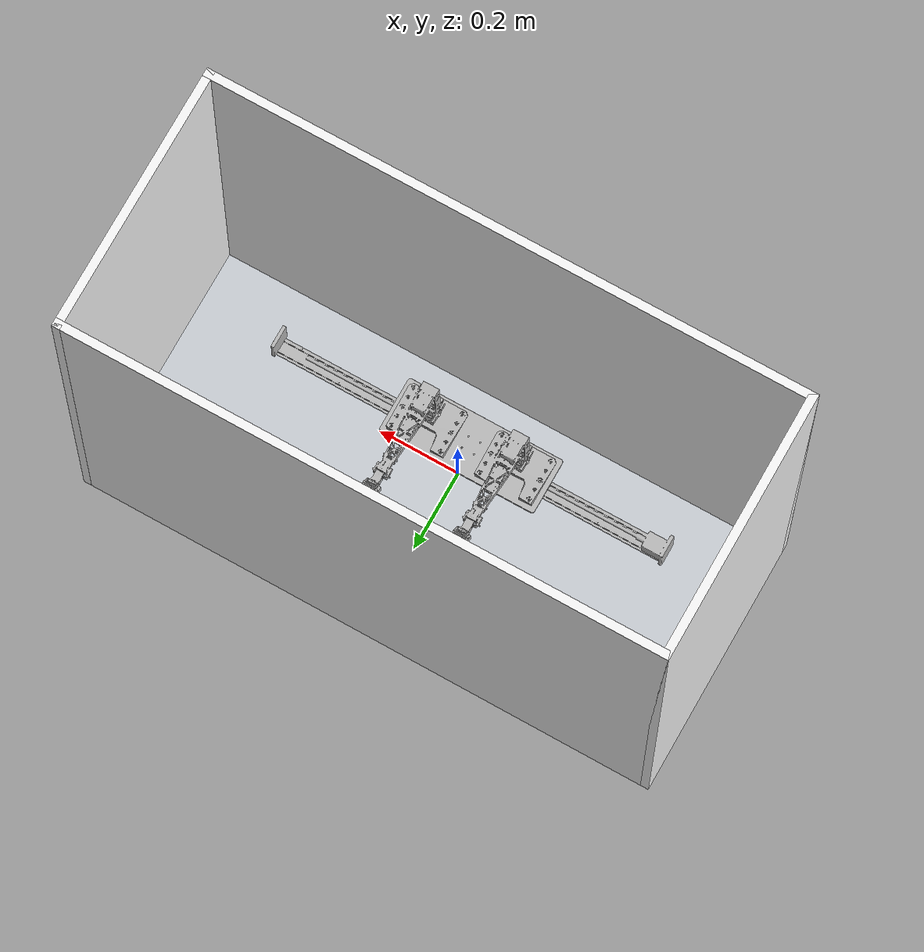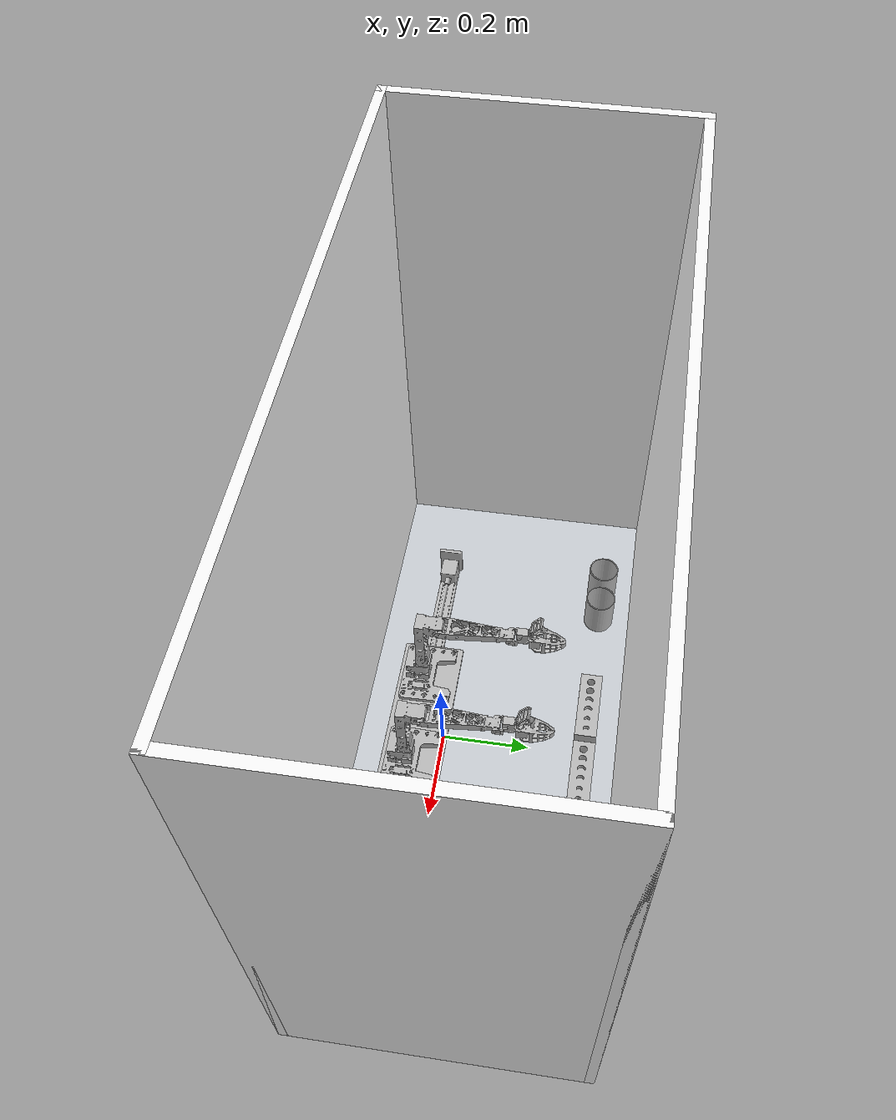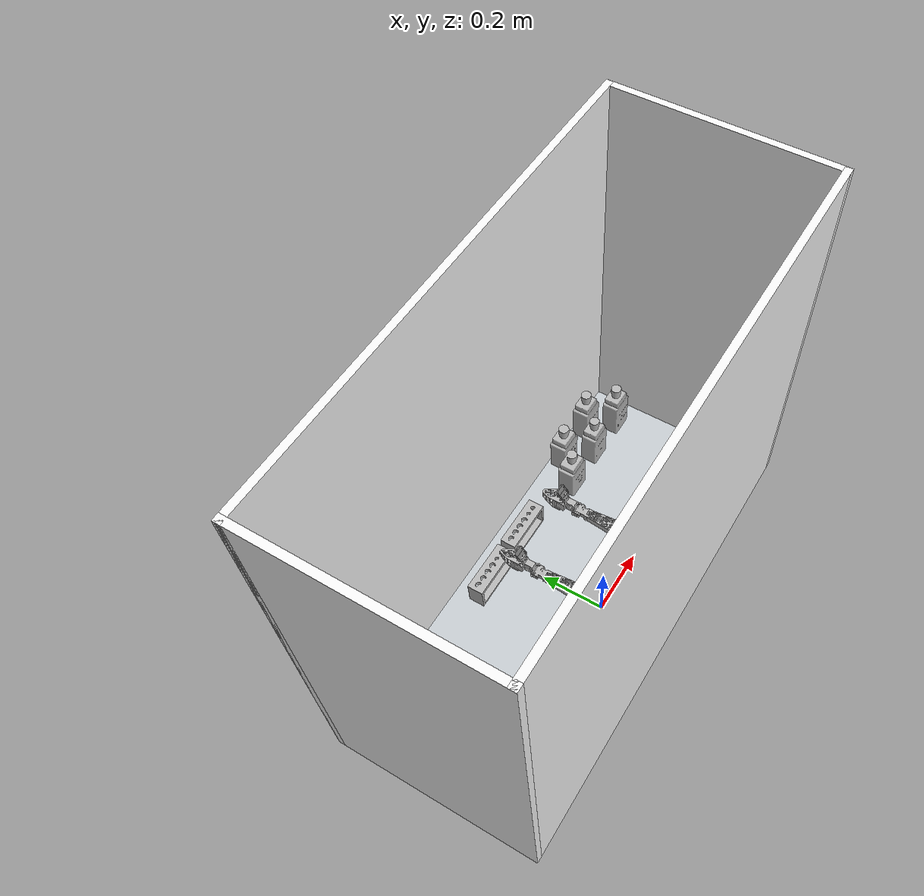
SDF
<?xml version="1.0"?>
<!-- Lab bench world (3zone layout).
     Generated by blender/scripts/export_gazebo.py - do not edit by hand. -->
<sdf version="1.10">
  <world name="lab_bench_3zone">

    <physics name="1ms" type="ignored">
      <max_step_size>0.001</max_step_size>
      <real_time_factor>1.0</real_time_factor>
    </physics>

    <plugin filename="gz-sim-physics-system"
            name="gz::sim::systems::Physics"/>
    <plugin filename="gz-sim-user-commands-system"
            name="gz::sim::systems::UserCommands"/>
    <plugin filename="gz-sim-scene-broadcaster-system"
            name="gz::sim::systems::SceneBroadcaster"/>
    <plugin filename="gz-sim-contact-system"
            name="gz::sim::systems::Contact"/>
    <plugin filename="gz-sim-sensors-system"
            name="gz::sim::systems::Sensors">
      <render_engine>ogre2</render_engine>
    </plugin>

    <gravity>0 0 -9.81</gravity>

    <scene>
      <!-- same white as bench_walls, so any sliver above the wall top does
           not read as "outside" to a camera -->
      <background>0.97 0.97 0.97 1</background>
      <ambient>0.55 0.55 0.55 1</ambient>
      <grid>false</grid>
      <shadows>true</shadows>
    </scene>

    <light type="directional" name="sun">
      <cast_shadows>true</cast_shadows>
      <pose>0 0 6 0 0 0</pose>
      <diffuse>0.9 0.9 0.9 1</diffuse>
      <specular>0.25 0.25 0.25 1</specular>
      <direction>-0.4 0.2 -0.9</direction>
    </light>

    <!-- bench surface: world Z = 0 -->
    <model name="bench_surface">
      <static>true</static>
      <link name="link">
        <collision name="collision">
          <pose>0 0.1054 -0.01 0 0 0</pose>
          <geometry><box><size>1.4 0.6 0.02</size></box></geometry>
          <surface>
            <friction><ode><mu>1.0</mu><mu2>1.0</mu2></ode></friction>
          </surface>
        </collision>
        <visual name="visual">
          <pose>0 0.1054 -0.01 0 0 0</pose>
          <geometry><box><size>1.4 0.6 0.02</size></box></geometry>
          <material>
            <ambient>0.72 0.74 0.76 1</ambient>
            <diffuse>0.78 0.80 0.82 1</diffuse>
            <specular>0.15 0.15 0.15 1</specular>
          </material>
        </visual>
      </link>
    </model>

    <!-- white boundary walls: tall enough that a camera on the bench
         frames wall, not the world outside -->
    <model name="bench_walls">
      <static>true</static>
      <link name="link">
        <collision name="left_collision">
          <pose>-0.71 0.1054 0.6 0 0 0</pose>
          <geometry><box><size>0.02 0.64 1.2</size></box></geometry>
        </collision>
        <visual name="left_visual">
          <pose>-0.71 0.1054 0.6 0 0 0</pose>
          <geometry><box><size>0.02 0.64 1.2</size></box></geometry>
          <material>
            <ambient>0.90 0.90 0.90 1</ambient>
            <diffuse>0.97 0.97 0.97 1</diffuse>
            <specular>0.10 0.10 0.10 1</specular>
          </material>
        </visual>
        <collision name="right_collision">
          <pose>0.71 0.1054 0.6 0 0 0</pose>
          <geometry><box><size>0.02 0.64 1.2</size></box></geometry>
        </collision>
        <visual name="right_visual">
          <pose>0.71 0.1054 0.6 0 0 0</pose>
          <geometry><box><size>0.02 0.64 1.2</size></box></geometry>
          <material>
            <ambient>0.90 0.90 0.90 1</ambient>
            <diffuse>0.97 0.97 0.97 1</diffuse>
            <specular>0.10 0.10 0.10 1</specular>
          </material>
        </visual>
        <collision name="front_collision">
          <pose>0.0 -0.2046 0.6 0 0 0</pose>
          <geometry><box><size>1.44 0.02 1.2</size></box></geometry>
        </collision>
        <visual name="front_visual">
          <pose>0.0 -0.2046 0.6 0 0 0</pose>
          <geometry><box><size>1.44 0.02 1.2</size></box></geometry>
          <material>
            <ambient>0.90 0.90 0.90 1</ambient>
            <diffuse>0.97 0.97 0.97 1</diffuse>
            <specular>0.10 0.10 0.10 1</specular>
          </material>
        </visual>
        <collision name="back_collision">
          <pose>0.0 0.4154 0.6 0 0 0</pose>
          <geometry><box><size>1.44 0.02 1.2</size></box></geometry>
        </collision>
        <visual name="back_visual">
          <pose>0.0 0.4154 0.6 0 0 0</pose>
          <geometry><box><size>1.44 0.02 1.2</size></box></geometry>
          <material>
            <ambient>0.90 0.90 0.90 1</ambient>
            <diffuse>0.97 0.97 0.97 1</diffuse>
            <specular>0.10 0.10 0.10 1</specular>
          </material>
        </visual>
      </link>
    </model>

    <include>
      <uri>model://beaker</uri>
      <name>beaker_01</name>
      <pose>-0.477500 0.330000 0.000000 0 0 0</pose>
    </include>
    <include>
      <uri>model://beaker</uri>
      <name>beaker_02</name>
      <pose>-0.387500 0.330000 0.000000 0 0 0</pose>
    </include>
    <include>
      <uri>model://cylinder_holder</uri>
      <name>cylinder_holder_01</name>
      <pose>-0.090000 0.330000 0.000000 0 0 0</pose>
    </include>
    <include>
      <uri>model://cylinder_holder</uri>
      <name>cylinder_holder_02</name>
      <pose>0.090000 0.330000 0.000000 0 0 0</pose>
    </include>
    <include>
      <uri>model://reagent_bottle_h2o2</uri>
      <name>reagent_bottle_h2o2</name>
      <pose>0.330000 0.295000 0.000000 0 0 0</pose>
    </include>
    <include>
      <uri>model://reagent_bottle_ethanol</uri>
      <name>reagent_bottle_ethanol</name>
      <pose>0.400000 0.365000 0.000000 0 0 0</pose>
    </include>
    <include>
      <uri>model://reagent_bottle_solvent</uri>
      <name>reagent_bottle_solvent</name>
      <pose>0.470000 0.295000 0.000000 0 0 0</pose>
    </include>
    <include>
      <uri>model://reagent_bottle_acid</uri>
      <name>reagent_bottle_acid</name>
      <pose>0.540000 0.365000 0.000000 0 0 0</pose>
    </include>
    <include>
      <uri>model://reagent_bottle_naoh</uri>
      <name>reagent_bottle_naoh</name>
      <pose>0.610000 0.295000 0.000000 0 0 0</pose>
    </include>
    <include>
      <uri>model://rail_axis</uri>
      <name>rail_axis</name>
      <pose>0.000000 0.000000 0.000000 0 0 0</pose>
    </include>
    <include>
      <uri>model://omx_mounting_plate</uri>
      <name>omx_mounting_plate</name>
      <pose>0.000000 0.000000 0.000000 0 0 0</pose>
    </include>
    <include>
      <uri>model://omx_module</uri>
      <name>omx_module_left</name>
      <pose>-0.116527 0.074456 0.000000 0 0 0</pose>
    </include>
    <include>
      <uri>model://omx_module</uri>
      <name>omx_module_right</name>
      <pose>0.108469 0.075270 0.000000 0 0 0</pose>
    </include>

  </world>
</sdf>

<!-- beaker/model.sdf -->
<sdf version="1.10">
  <model name="beaker">
    <static>true</static>
    <link name="base_link">
      <inertial>
        <pose>0.000000 0.000000 0.047500 0 0 0</pose>
        <mass>0.1500</mass>
        <inertia>
          <ixx>0.00015875</ixx><ixy>0</ixy><ixz>0</ixz>
          <iyy>0.00015875</iyy><iyz>0</iyz>
          <izz>0.00009188</izz>
        </inertia>
      </inertial>
      <collision name="collision">
        <pose>0.000000 0.000000 0.047500 0 0 0</pose>
        <geometry>
          <cylinder><radius>0.035000</radius><length>0.095000</length></cylinder>
        </geometry>
        <surface>
          <friction><ode><mu>0.9</mu><mu2>0.9</mu2></ode></friction>
        </surface>
      </collision>
      <visual name="visual">
        <geometry>
          <mesh><uri>model://beaker/meshes/beaker.obj</uri></mesh>
        </geometry>
      </visual>
    </link>
  </model>
</sdf>

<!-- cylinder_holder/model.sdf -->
<sdf version="1.10">
  <model name="cylinder_holder">
    <static>true</static>
    <link name="base_link">
      <inertial>
        <pose>0.000000 0.000000 0.040000 0 0 0</pose>
        <mass>0.2500</mass>
        <inertia>
          <ixx>0.00018542</ixx><ixy>0</ixy><ixz>0</ixz>
          <iyy>0.00070052</iyy><iyz>0</iyz>
          <izz>0.00061927</izz>
        </inertia>
      </inertial>
      <collision name="collision">
        <pose>0.000000 0.000000 0.040000 0 0 0</pose>
        <geometry>
          <box><size>0.165000 0.050000 0.080000</size></box>
        </geometry>
        <surface>
          <friction><ode><mu>0.9</mu><mu2>0.9</mu2></ode></friction>
        </surface>
      </collision>
      <visual name="visual">
        <geometry>
          <mesh><uri>model://cylinder_holder/meshes/cylinder_holder.obj</uri></mesh>
        </geometry>
      </visual>
    </link>
  </model>
</sdf>

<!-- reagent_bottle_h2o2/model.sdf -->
<sdf version="1.10">
  <model name="reagent_bottle_h2o2">
    <static>false</static>
    <link name="base_link">
      <inertial>
        <pose>0.000000 0.000000 0.086000 0 0 0</pose>
        <mass>0.5500</mass>
        <inertia>
          <ixx>0.00151012</ixx><ixy>0</ixy><ixz>0</ixz>
          <iyy>0.00161375</iyy><iyz>0</iyz>
          <izz>0.00041200</izz>
        </inertia>
      </inertial>
      <collision name="collision">
        <pose>0.000000 0.000000 0.086000 0 0 0</pose>
        <geometry>
          <box><size>0.075000 0.058000 0.172000</size></box>
        </geometry>
        <surface>
          <friction><ode><mu>0.9</mu><mu2>0.9</mu2></ode></friction>
        </surface>
      </collision>
      <visual name="visual">
        <geometry>
          <mesh><uri>model://reagent_bottle_h2o2/meshes/reagent_bottle_h2o2.obj</uri></mesh>
        </geometry>
      </visual>
    </link>
  </model>
</sdf>

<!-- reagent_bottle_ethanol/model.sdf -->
<sdf version="1.10">
  <model name="reagent_bottle_ethanol">
    <static>false</static>
    <link name="base_link">
      <inertial>
        <pose>0.000000 0.000000 0.086000 0 0 0</pose>
        <mass>0.5500</mass>
        <inertia>
          <ixx>0.00151012</ixx><ixy>0</ixy><ixz>0</ixz>
          <iyy>0.00161375</iyy><iyz>0</iyz>
          <izz>0.00041200</izz>
        </inertia>
      </inertial>
      <collision name="collision">
        <pose>0.000000 0.000000 0.086000 0 0 0</pose>
        <geometry>
          <box><size>0.075000 0.058000 0.172000</size></box>
        </geometry>
        <surface>
          <friction><ode><mu>0.9</mu><mu2>0.9</mu2></ode></friction>
        </surface>
      </collision>
      <visual name="visual">
        <geometry>
          <mesh><uri>model://reagent_bottle_ethanol/meshes/reagent_bottle_ethanol.obj</uri></mesh>
        </geometry>
      </visual>
    </link>
  </model>
</sdf>

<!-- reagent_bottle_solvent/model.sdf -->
<sdf version="1.10">
  <model name="reagent_bottle_solvent">
    <static>false</static>
    <link name="base_link">
      <inertial>
        <pose>0.000000 0.000000 0.089500 0 0 0</pose>
        <mass>0.5200</mass>
        <inertia>
          <ixx>0.00151480</ixx><ixy>0</ixy><ixz>0</ixz>
          <iyy>0.00160078</iyy><iyz>0</iyz>
          <izz>0.00033869</izz>
        </inertia>
      </inertial>
      <collision name="collision">
        <pose>0.000000 0.000000 0.089500 0 0 0</pose>
        <geometry>
          <box><size>0.070000 0.054000 0.179000</size></box>
        </geometry>
        <surface>
          <friction><ode><mu>0.9</mu><mu2>0.9</mu2></ode></friction>
        </surface>
      </collision>
      <visual name="visual">
        <geometry>
          <mesh><uri>model://reagent_bottle_solvent/meshes/reagent_bottle_solvent.obj</uri></mesh>
        </geometry>
      </visual>
    </link>
  </model>
</sdf>

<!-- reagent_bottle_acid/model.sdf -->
<sdf version="1.10">
  <model name="reagent_bottle_acid">
    <static>false</static>
    <link name="base_link">
      <inertial>
        <pose>0.000000 0.000000 0.093500 0 0 0</pose>
        <mass>0.6000</mass>
        <inertia>
          <ixx>0.00190525</ixx><ixy>0</ixy><ixz>0</ixz>
          <iyy>0.00201490</iyy><iyz>0</iyz>
          <izz>0.00042325</izz>
        </inertia>
      </inertial>
      <collision name="collision">
        <pose>0.000000 0.000000 0.093500 0 0 0</pose>
        <geometry>
          <box><size>0.073000 0.056000 0.187000</size></box>
        </geometry>
        <surface>
          <friction><ode><mu>0.9</mu><mu2>0.9</mu2></ode></friction>
        </surface>
      </collision>
      <visual name="visual">
        <geometry>
          <mesh><uri>model://reagent_bottle_acid/meshes/reagent_bottle_acid.obj</uri></mesh>
        </geometry>
      </visual>
    </link>
  </model>
</sdf>

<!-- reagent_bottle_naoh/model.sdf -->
<sdf version="1.10">
  <model name="reagent_bottle_naoh">
    <static>false</static>
    <link name="base_link">
      <inertial>
        <pose>0.000000 0.000000 0.093500 0 0 0</pose>
        <mass>0.6000</mass>
        <inertia>
          <ixx>0.00190525</ixx><ixy>0</ixy><ixz>0</ixz>
          <iyy>0.00201490</iyy><iyz>0</iyz>
          <izz>0.00042325</izz>
        </inertia>
      </inertial>
      <collision name="collision">
        <pose>0.000000 0.000000 0.093500 0 0 0</pose>
        <geometry>
          <box><size>0.073000 0.056000 0.187000</size></box>
        </geometry>
        <surface>
          <friction><ode><mu>0.9</mu><mu2>0.9</mu2></ode></friction>
        </surface>
      </collision>
      <visual name="visual">
        <geometry>
          <mesh><uri>model://reagent_bottle_naoh/meshes/reagent_bottle_naoh.obj</uri></mesh>
        </geometry>
      </visual>
    </link>
  </model>
</sdf>

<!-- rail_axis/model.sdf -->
<!-- generated by blender/scripts/export_gazebo.py -->
<sdf version="1.10">
  <model name="rail_axis">
    <static>false</static>

    <link name="rail_base">
      <inertial>
        <pose>0.000000 -0.063000 0.036500 0 0 0</pose>
        <mass>6.0000</mass>
        <inertia>
          <ixx>0.00423250</ixx><ixy>0</ixy><ixz>0</ixz>
          <iyy>0.50266450</iyy><iyz>0</iyz>
          <izz>0.50156800</izz>
        </inertia>
      </inertial>
      <collision name="collision">
        <pose>0.000000 -0.063000 0.036500 0 0 0</pose>
        <geometry>
          <box><size>1.000000 0.056000 0.073000</size></box>
        </geometry>
      </collision>
      <visual name="visual">
        <geometry>
          <mesh><uri>model://linear_rail/meshes/linear_rail.obj</uri></mesh>
        </geometry>
      </visual>
    </link>

    <link name="carriage">
      <pose>0 -0.063 0 0 0 0</pose>
      <inertial>
        <pose>0.000000 0.000000 0.041000 0 0 0</pose>
        <mass>0.8000</mass>
        <inertia>
          <ixx>0.00049627</ixx><ixy>0</ixy><ixz>0</ixz>
          <iyy>0.00068293</iyy><iyz>0</iyz>
          <izz>0.00066667</izz>
        </inertia>
      </inertial>
      <collision name="collision">
        <pose>0.000000 0.000000 0.041000 0 0 0</pose>
        <geometry>
          <box><size>0.080000 0.060000 0.062000</size></box>
        </geometry>
      </collision>
      <visual name="visual">
        <geometry>
          <mesh><uri>model://rail_carriage/meshes/rail_carriage.obj</uri></mesh>
        </geometry>
      </visual>
    </link>

    <joint name="world_fixed" type="fixed">
      <parent>world</parent>
      <child>rail_base</child>
    </joint>

    <joint name="carriage_slide" type="prismatic">
      <parent>rail_base</parent>
      <child>carriage</child>
      <axis>
        <xyz>1 0 0</xyz>
        <limit>
          <lower>-0.4200</lower>
          <upper>0.4200</upper>
          <effort>60</effort>
          <velocity>0.25</velocity>
        </limit>
        <dynamics><damping>4.0</damping><friction>1.0</friction></dynamics>
      </axis>
    </joint>

    <plugin filename="gz-sim-joint-position-controller-system"
            name="gz::sim::systems::JointPositionController">
      <joint_name>carriage_slide</joint_name>
      <topic>/rail_axis/carriage_slide/cmd_pos</topic>
      <p_gain>800</p_gain>
      <i_gain>10</i_gain>
      <d_gain>60</d_gain>
      <cmd_max>60</cmd_max>
      <cmd_min>-60</cmd_min>
    </plugin>

    <!-- explicit topic so it does not carry the world name, and one
         ros_gz_bridge config serves every layout variant -->
    <plugin filename="gz-sim-joint-state-publisher-system"
            name="gz::sim::systems::JointStatePublisher">
      <joint_name>carriage_slide</joint_name>
      <topic>/rail_axis/joint_state</topic>
    </plugin>
  </model>
</sdf>

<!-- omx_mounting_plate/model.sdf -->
<sdf version="1.10">
  <model name="omx_mounting_plate">
    <static>true</static>
    <link name="base_link">
      <inertial>
        <pose>-0.004000 -0.053000 0.070500 0 0 0</pose>
        <mass>1.2000</mass>
        <inertia>
          <ixx>0.00196360</ixx><ixy>0</ixy><ixz>0</ixz>
          <iyy>0.01560610</iyy><iyz>0</iyz>
          <izz>0.01756250</izz>
        </inertia>
      </inertial>
      <collision name="collision">
        <pose>-0.004000 -0.053000 0.070500 0 0 0</pose>
        <geometry>
          <box><size>0.395000 0.140000 0.006000</size></box>
        </geometry>
        <surface>
          <friction><ode><mu>0.9</mu><mu2>0.9</mu2></ode></friction>
        </surface>
      </collision>
      <visual name="visual">
        <geometry>
          <mesh><uri>model://omx_mounting_plate/meshes/omx_mounting_plate.obj</uri></mesh>
        </geometry>
      </visual>
    </link>
  </model>
</sdf>

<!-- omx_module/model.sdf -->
<sdf version="1.10">
  <model name="omx_module">
    <static>true</static>
    <link name="base_link">
      <inertial>
        <pose>0.000000 0.075000 0.214000 0 0 0</pose>
        <mass>1.5000</mass>
        <inertia>
          <ixx>0.02716925</ixx><ixy>0</ixy><ixz>0</ixz>
          <iyy>0.01240363</iyy><iyz>0</iyz>
          <izz>0.02039062</izz>
        </inertia>
      </inertial>
      <collision name="collision">
        <pose>0.000000 0.075000 0.214000 0 0 0</pose>
        <geometry>
          <box><size>0.150000 0.375000 0.277000</size></box>
        </geometry>
        <surface>
          <friction><ode><mu>0.9</mu><mu2>0.9</mu2></ode></friction>
        </surface>
      </collision>
      <visual name="visual">
        <geometry>
          <mesh><uri>model://omx_module/meshes/omx_module.obj</uri></mesh>
        </geometry>
      </visual>
    </link>
  </model>
</sdf>
